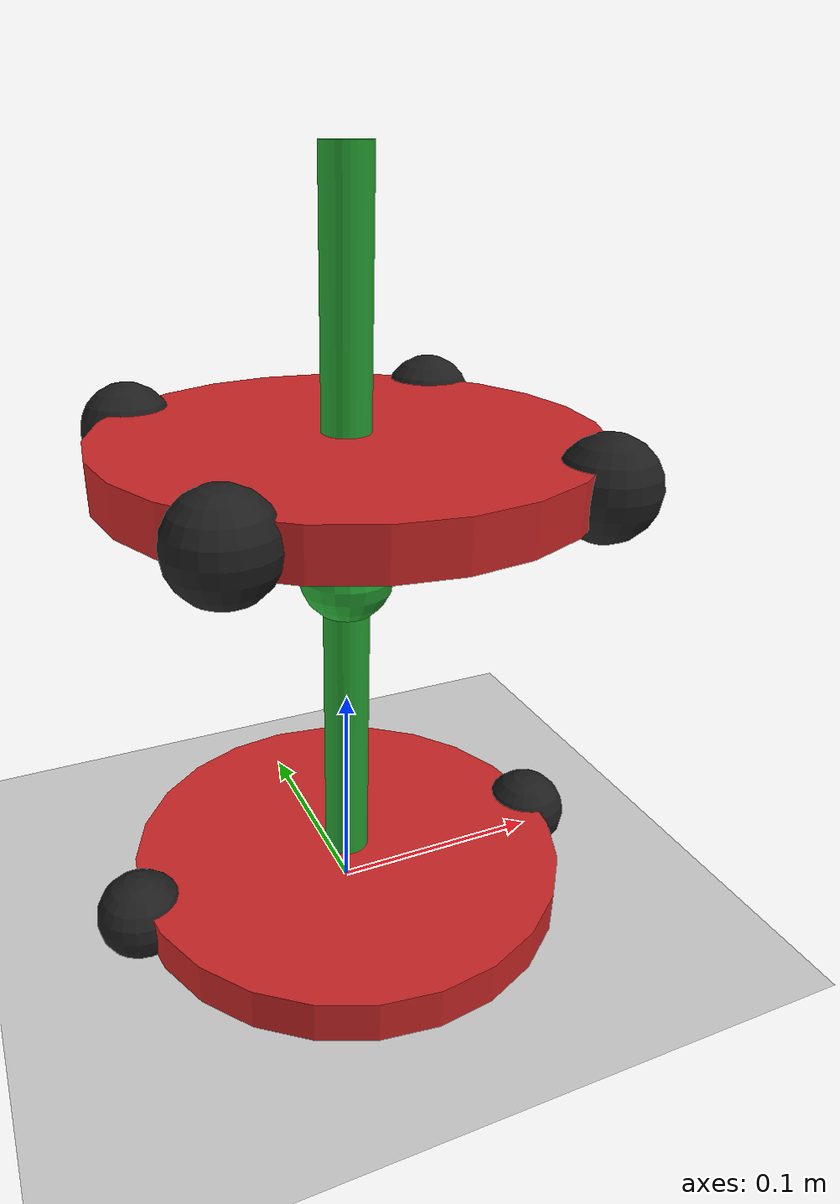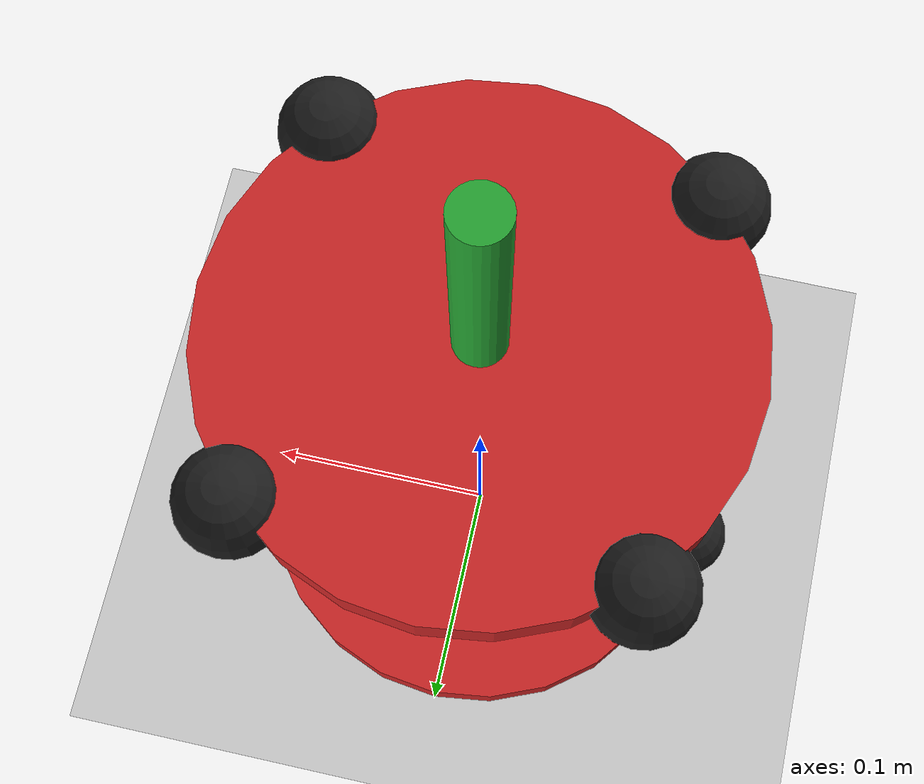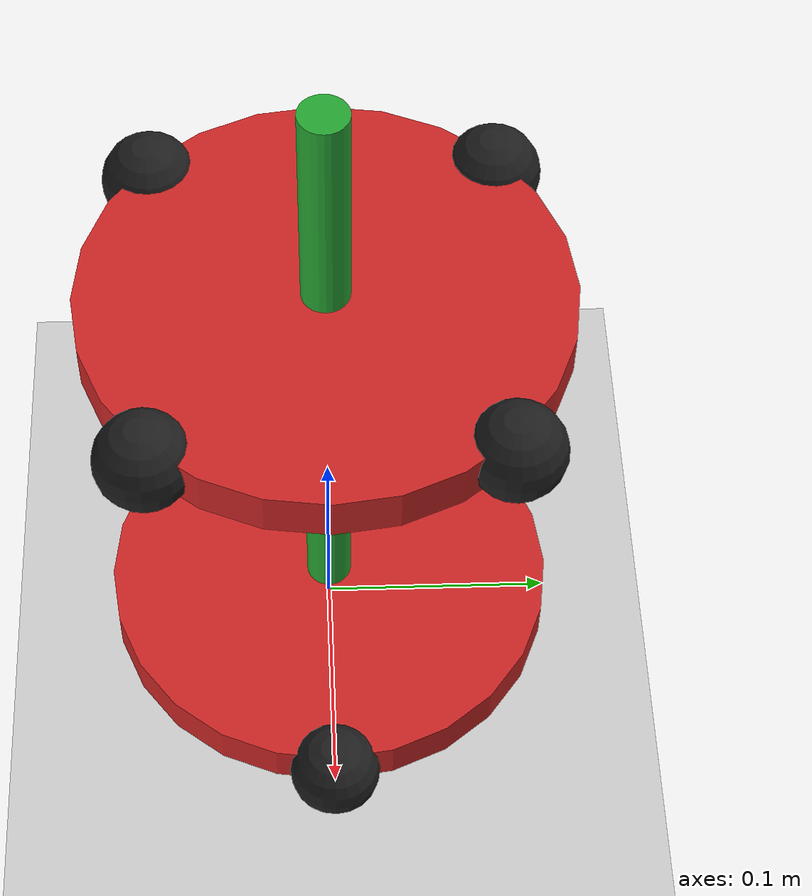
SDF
<?xml version="1.0" ?>
<sdf version="1.5">
  <world name="default">
    <!-- A global light source -->
    <include>
      <uri>model://sun</uri>
    </include>
    <!-- A ground plane -->
    <include>
      <uri>model://ground_plane</uri>
    </include>

    <!-- A testing model that includes the Velodyne sensor model -->
      <include>
        <uri>model://cable_joint</uri>
      </include>
      <plugin name="cable_force" filename="libcableforce_plugin.so"/>
    <physics type='ode'>
 	 <max_step_size>0.01</max_step_size>
 	 <real_time_factor>1</real_time_factor>
  	<real_time_update_rate>100</real_time_update_rate>
 	 <gravity>0 0 0</gravity>
    </physics>
      <!-- Attach the plugin to this model -->

  </world>
</sdf>

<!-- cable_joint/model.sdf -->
<sdf version='1.6'>
  <model name='cable_joint'>
    <link name='link_0'>
      <pose frame=''>0 0 0.01 0 -0 0</pose>
      <inertial>
        <mass>1e+07</mass>
        <inertia>
          <ixx>100000</ixx>
          <ixy>0</ixy>
          <ixz>0</ixz>
          <iyy>100000</iyy>
          <iyz>0</iyz>
          <izz>100000</izz>
        </inertia>
        <pose frame=''>0 0 0 0 -0 0</pose>
      </inertial>
      <self_collide>0</self_collide>
      <kinematic>0</kinematic>
      <gravity>1</gravity>
      <visual name='visual'>
        <pose frame=''>0 0 0 0 -0 0</pose>
        <geometry>
          <cylinder>
            <radius>0.1</radius>
            <length>0.02</length>
          </cylinder>
        </geometry>
        <material>
          <lighting>1</lighting>
          <script>
            <uri>file://media/materials/scripts/gazebo.material</uri>
            <name>Gazebo/Red</name>
          </script>
          <emissive>0 0 0 1</emissive>
          <shader type='vertex'>
            <normal_map>__default__</normal_map>
          </shader>
        </material>
        <cast_shadows>1</cast_shadows>
        <transparency>0</transparency>
      </visual>
      <collision name='collision'>
        <laser_retro>0</laser_retro>
        <max_contacts>100</max_contacts>
        <pose frame=''>0 0 0 0 -0 0</pose>
        <geometry>
          <cylinder>
            <radius>0.1</radius>
            <length>0.02</length>
          </cylinder>
        </geometry>
        <surface>
          <friction>
            <ode>
              <mu>1</mu>
              <mu2>1</mu2>
              <fdir1>0 0 0</fdir1>
              <slip1>0</slip1>
              <slip2>0</slip2>
            </ode>
            <torsional>
              <coefficient>1</coefficient>
              <patch_radius>0</patch_radius>
              <surface_radius>0</surface_radius>
              <use_patch_radius>1</use_patch_radius>
              <ode>
                <slip>0</slip>
              </ode>
            </torsional>
          </friction>
          <bounce>
            <restitution_coefficient>0</restitution_coefficient>
            <threshold>1e+06</threshold>
          </bounce>
          <contact>
            <collide_without_contact>0</collide_without_contact>
            <collide_without_contact_bitmask>1</collide_without_contact_bitmask>
            <collide_bitmask>1</collide_bitmask>
            <ode>
              <soft_cfm>0</soft_cfm>
              <soft_erp>0.2</soft_erp>
              <kp>1e+13</kp>
              <kd>1</kd>
              <max_vel>0.01</max_vel>
              <min_depth>0</min_depth>
            </ode>
            <bullet>
              <split_impulse>1</split_impulse>
              <split_impulse_penetration_threshold>-0.01</split_impulse_penetration_threshold>
              <soft_cfm>0</soft_cfm>
              <soft_erp>0.2</soft_erp>
              <kp>1e+13</kp>
              <kd>1</kd>
            </bullet>
          </contact>
        </surface>
      </collision>
    </link>
    <link name='link_1'>
      <pose frame=''>-0 0 0.09 0 -0 0</pose>
      <inertial>
        <mass>1</mass>
        <inertia>
          <ixx>0.145833</ixx>
          <ixy>0</ixy>
          <ixz>0</ixz>
          <iyy>0.145833</iyy>
          <iyz>0</iyz>
          <izz>0.125</izz>
        </inertia>
        <pose frame=''>0 0 0 0 -0 0</pose>
      </inertial>
      <self_collide>0</self_collide>
      <kinematic>0</kinematic>
      <visual name='visual'>
        <pose frame=''>0 0 0 0 -0 0</pose>
        <geometry>
          <cylinder>
            <radius>0.01</radius>
            <length>0.14</length>
          </cylinder>
        </geometry>
        <material>
          <lighting>1</lighting>
          <script>
            <uri>file://media/materials/scripts/gazebo.material</uri>
            <name>Gazebo/Green</name>
          </script>
          <emissive>0 0 0 1</emissive>
          <shader type='vertex'>
            <normal_map>__default__</normal_map>
          </shader>
        </material>
        <cast_shadows>1</cast_shadows>
        <transparency>0</transparency>
      </visual>
      <collision name='collision'>
        <laser_retro>0</laser_retro>
        <max_contacts>100</max_contacts>
        <pose frame=''>0 0 0 0 -0 0</pose>
        <geometry>
          <cylinder>
            <radius>0.01</radius>
            <length>0.01</length>
          </cylinder>
        </geometry>
        <surface>
          <friction>
            <ode>
              <mu>1</mu>
              <mu2>1</mu2>
              <fdir1>0 0 0</fdir1>
              <slip1>0</slip1>
              <slip2>0</slip2>
            </ode>
            <torsional>
              <coefficient>1</coefficient>
              <patch_radius>0</patch_radius>
              <surface_radius>0</surface_radius>
              <use_patch_radius>1</use_patch_radius>
              <ode>
                <slip>0</slip>
              </ode>
            </torsional>
          </friction>
          <bounce>
            <restitution_coefficient>0</restitution_coefficient>
            <threshold>1e+06</threshold>
          </bounce>
          <contact>
            <collide_without_contact>0</collide_without_contact>
            <collide_without_contact_bitmask>1</collide_without_contact_bitmask>
            <collide_bitmask>1</collide_bitmask>
            <ode>
              <soft_cfm>0</soft_cfm>
              <soft_erp>0.2</soft_erp>
              <kp>1e+13</kp>
              <kd>1</kd>
              <max_vel>0.01</max_vel>
              <min_depth>0</min_depth>
            </ode>
            <bullet>
              <split_impulse>1</split_impulse>
              <split_impulse_penetration_threshold>-0.01</split_impulse_penetration_threshold>
              <soft_cfm>0</soft_cfm>
              <soft_erp>0.2</soft_erp>
              <kp>1e+13</kp>
              <kd>1</kd>
            </bullet>
          </contact>
        </surface>
      </collision>
    </link>
    <link name='link_2'>
      <pose frame=''>0 -0 0.18 0 -0 0</pose>
      <inertial>
        <mass>2</mass>
        <inertia>
          <ixx>0.01</ixx>
          <ixy>0</ixy>
          <ixz>0</ixz>
          <iyy>0.01</iyy>
          <iyz>0</iyz>
          <izz>0.01</izz>
        </inertia>
        <pose frame=''>0 0 0 0 -0 0</pose>
      </inertial>
      <self_collide>0</self_collide>
      <kinematic>0</kinematic>
      <visual name='visual'>
        <pose frame=''>0 0 0 0 -0 0</pose>
        <geometry>
          <cylinder>
            <radius>0.01</radius>
            <length>0.04</length>
          </cylinder>
        </geometry>
        <material>
          <lighting>1</lighting>
          <script>
            <uri>file://media/materials/scripts/gazebo.material</uri>
            <name>Gazebo/Green</name>
          </script>
          <emissive>0 0 0 1</emissive>
          <shader type='vertex'>
            <normal_map>__default__</normal_map>
          </shader>
        </material>
        <cast_shadows>1</cast_shadows>
        <transparency>0</transparency>
      </visual>
      <collision name='collision'>
        <laser_retro>0</laser_retro>
        <max_contacts>100</max_contacts>
        <pose frame=''>0 0 0 0 -0 0</pose>
        <geometry>
          <cylinder>
            <radius>0.01</radius>
            <length>0.01</length>
          </cylinder>
        </geometry>
        <surface>
          <friction>
            <ode>
              <mu>1</mu>
              <mu2>1</mu2>
              <fdir1>0 0 0</fdir1>
              <slip1>0</slip1>
              <slip2>0</slip2>
            </ode>
            <torsional>
              <coefficient>1</coefficient>
              <patch_radius>0</patch_radius>
              <surface_radius>0</surface_radius>
              <use_patch_radius>1</use_patch_radius>
              <ode>
                <slip>0</slip>
              </ode>
            </torsional>
          </friction>
          <bounce>
            <restitution_coefficient>0</restitution_coefficient>
            <threshold>1e+06</threshold>
          </bounce>
          <contact>
            <collide_without_contact>0</collide_without_contact>
            <collide_without_contact_bitmask>1</collide_without_contact_bitmask>
            <collide_bitmask>1</collide_bitmask>
            <ode>
              <soft_cfm>0</soft_cfm>
              <soft_erp>0.2</soft_erp>
              <kp>1e+13</kp>
              <kd>1</kd>
              <max_vel>0.01</max_vel>
              <min_depth>0</min_depth>
            </ode>
            <bullet>
              <split_impulse>1</split_impulse>
              <split_impulse_penetration_threshold>-0.01</split_impulse_penetration_threshold>
              <soft_cfm>0</soft_cfm>
              <soft_erp>0.2</soft_erp>
              <kp>1e+13</kp>
              <kd>1</kd>
            </bullet>
          </contact>
        </surface>
      </collision>
    </link>
    <link name='link_3'>
      <pose frame=''>-0 0 0.21 0 -0 0</pose>
      <inertial>
        <mass>1</mass>
        <inertia>
          <ixx>0.1</ixx>
          <ixy>0</ixy>
          <ixz>0</ixz>
          <iyy>0.1</iyy>
          <iyz>0</iyz>
          <izz>0.1</izz>
        </inertia>
        <pose frame=''>0 0 0 0 -0 0</pose>
      </inertial>
      <self_collide>0</self_collide>
      <kinematic>0</kinematic>
      <gravity>1</gravity>
      <visual name='visual'>
        <pose frame=''>0 0 0 0 -0 0</pose>
        <geometry>
          <cylinder>
            <radius>0.1</radius>
            <length>0.02</length>
          </cylinder>
        </geometry>
        <material>
          <lighting>1</lighting>
          <script>
            <uri>file://media/materials/scripts/gazebo.material</uri>
            <name>Gazebo/Red</name>
          </script>
          <emissive>0 0 0 1</emissive>
          <shader type='vertex'>
            <normal_map>__default__</normal_map>
          </shader>
        </material>
        <cast_shadows>1</cast_shadows>
        <transparency>0</transparency>
      </visual>
      <collision name='collision'>
        <laser_retro>0</laser_retro>
        <max_contacts>100</max_contacts>
        <pose frame=''>0 0 0 0 -0 0</pose>
        <geometry>
          <cylinder>
            <radius>0.1</radius>
            <length>0.02</length>
          </cylinder>
        </geometry>
        <surface>
          <friction>
            <ode>
              <mu>1</mu>
              <mu2>1</mu2>
              <fdir1>0 0 0</fdir1>
              <slip1>0</slip1>
              <slip2>0</slip2>
            </ode>
            <torsional>
              <coefficient>1</coefficient>
              <patch_radius>0</patch_radius>
              <surface_radius>0</surface_radius>
              <use_patch_radius>1</use_patch_radius>
              <ode>
                <slip>0</slip>
              </ode>
            </torsional>
          </friction>
          <bounce>
            <restitution_coefficient>0</restitution_coefficient>
            <threshold>1e+06</threshold>
          </bounce>
          <contact>
            <collide_without_contact>0</collide_without_contact>
            <collide_without_contact_bitmask>1</collide_without_contact_bitmask>
            <collide_bitmask>1</collide_bitmask>
            <ode>
              <soft_cfm>0</soft_cfm>
              <soft_erp>0.2</soft_erp>
              <kp>1e+13</kp>
              <kd>1</kd>
              <max_vel>0.01</max_vel>
              <min_depth>0</min_depth>
            </ode>
            <bullet>
              <split_impulse>1</split_impulse>
              <split_impulse_penetration_threshold>-0.01</split_impulse_penetration_threshold>
              <soft_cfm>0</soft_cfm>
              <soft_erp>0.2</soft_erp>
              <kp>1e+13</kp>
              <kd>1</kd>
            </bullet>
          </contact>
        </surface>
      </collision>
    </link>
    <link name='link_4'>
      <pose frame=''>0 -0 0.16 0 -0 0</pose>
      <inertial>
        <mass>1</mass>
        <inertia>
          <ixx>0.145833</ixx>
          <ixy>0</ixy>
          <ixz>0</ixz>
          <iyy>0.145833</iyy>
          <iyz>0</iyz>
          <izz>0.125</izz>
        </inertia>
        <pose frame=''>0 0 0 0 -0 0</pose>
      </inertial>
      <self_collide>0</self_collide>
      <kinematic>0</kinematic>
      <visual name='visual'>
        <pose frame=''>0 0 0 0 -0 0</pose>
        <geometry>
          <sphere>
            <radius>0.02</radius>
          </sphere>
        </geometry>
        <material>
          <lighting>1</lighting>
          <script>
            <uri>file://media/materials/scripts/gazebo.material</uri>
            <name>Gazebo/Green</name>
          </script>
          <emissive>0 0 0 1</emissive>
          <shader type='vertex'>
            <normal_map>__default__</normal_map>
          </shader>
        </material>
        <cast_shadows>1</cast_shadows>
        <transparency>0</transparency>
      </visual>
      <collision name='collision'>
        <laser_retro>0</laser_retro>
        <max_contacts>100</max_contacts>
        <pose frame=''>0 0 0 0 -0 0</pose>
        <geometry>
          <sphere>
            <radius>0.003</radius>
          </sphere>
        </geometry>
        <surface>
          <friction>
            <ode>
              <mu>1</mu>
              <mu2>1</mu2>
              <fdir1>0 0 0</fdir1>
              <slip1>0</slip1>
              <slip2>0</slip2>
            </ode>
            <torsional>
              <coefficient>1</coefficient>
              <patch_radius>0</patch_radius>
              <surface_radius>0</surface_radius>
              <use_patch_radius>1</use_patch_radius>
              <ode>
                <slip>0</slip>
              </ode>
            </torsional>
          </friction>
          <bounce>
            <restitution_coefficient>0</restitution_coefficient>
            <threshold>1e+06</threshold>
          </bounce>
          <contact>
            <collide_without_contact>0</collide_without_contact>
            <collide_without_contact_bitmask>1</collide_without_contact_bitmask>
            <collide_bitmask>1</collide_bitmask>
            <ode>
              <soft_cfm>0</soft_cfm>
              <soft_erp>0.2</soft_erp>
              <kp>1e+13</kp>
              <kd>1</kd>
              <max_vel>0.01</max_vel>
              <min_depth>0</min_depth>
            </ode>
            <bullet>
              <split_impulse>1</split_impulse>
              <split_impulse_penetration_threshold>-0.01</split_impulse_penetration_threshold>
              <soft_cfm>0</soft_cfm>
              <soft_erp>0.2</soft_erp>
              <kp>1e+13</kp>
              <kd>1</kd>
            </bullet>
          </contact>
        </surface>
      </collision>
    </link>
    <link name='baseball1'>
      <pose frame=''>0.1 -0 0.01 0 -0 0</pose>
      <inertial>
        <mass>0.001</mass>
        <inertia>
          <ixx>0.000145833</ixx>
          <ixy>0</ixy>
          <ixz>0</ixz>
          <iyy>0.000145833</iyy>
          <iyz>0</iyz>
          <izz>0.000125</izz>
        </inertia>
        <pose frame=''>0 0 0 0 -0 0</pose>
      </inertial>
      <self_collide>0</self_collide>
      <kinematic>0</kinematic>
      <visual name='visual'>
        <pose frame=''>0 0 0 0 -0 0</pose>
        <geometry>
          <sphere>
            <radius>0.02</radius>
          </sphere>
        </geometry>
        <material>
          <lighting>1</lighting>
          <script>
            <uri>file://media/materials/scripts/gazebo.material</uri>
            <name>Gazebo/Black</name>
          </script>
          <emissive>0 0 0 1</emissive>
          <shader type='vertex'>
            <normal_map>__default__</normal_map>
          </shader>
        </material>
        <cast_shadows>1</cast_shadows>
        <transparency>0</transparency>
      </visual>
      <collision name='collision'>
        <laser_retro>0</laser_retro>
        <max_contacts>100</max_contacts>
        <pose frame=''>0 0 0 0 -0 0</pose>
        <geometry>
          <sphere>
            <radius>0.003</radius>
          </sphere>
        </geometry>
        <surface>
          <friction>
            <ode>
              <mu>1</mu>
              <mu2>1</mu2>
              <fdir1>0 0 0</fdir1>
              <slip1>0</slip1>
              <slip2>0</slip2>
            </ode>
            <torsional>
              <coefficient>1</coefficient>
              <patch_radius>0</patch_radius>
              <surface_radius>0</surface_radius>
              <use_patch_radius>1</use_patch_radius>
              <ode>
                <slip>0</slip>
              </ode>
            </torsional>
          </friction>
          <bounce>
            <restitution_coefficient>0</restitution_coefficient>
            <threshold>1e+06</threshold>
          </bounce>
          <contact>
            <collide_without_contact>0</collide_without_contact>
            <collide_without_contact_bitmask>1</collide_without_contact_bitmask>
            <collide_bitmask>1</collide_bitmask>
            <ode>
              <soft_cfm>0</soft_cfm>
              <soft_erp>0.2</soft_erp>
              <kp>1e+13</kp>
              <kd>1</kd>
              <max_vel>0.01</max_vel>
              <min_depth>0</min_depth>
            </ode>
            <bullet>
              <split_impulse>1</split_impulse>
              <split_impulse_penetration_threshold>-0.01</split_impulse_penetration_threshold>
              <soft_cfm>0</soft_cfm>
              <soft_erp>0.2</soft_erp>
              <kp>1e+13</kp>
              <kd>1</kd>
            </bullet>
          </contact>
        </surface>
      </collision>
    </link>
<link name='baseball2'>
      <pose frame=''>-0.1 -0 0.01 0 -0 0</pose>
      <inertial>
        <mass>0.001</mass>
        <inertia>
          <ixx>0.000145833</ixx>
          <ixy>0</ixy>
          <ixz>0</ixz>
          <iyy>0.000145833</iyy>
          <iyz>0</iyz>
          <izz>0.000125</izz>
        </inertia>
        <pose frame=''>0 0 0 0 -0 0</pose>
      </inertial>
      <self_collide>0</self_collide>
      <kinematic>0</kinematic>
      <visual name='visual'>
        <pose frame=''>0 0 0 0 -0 0</pose>
        <geometry>
          <sphere>
            <radius>0.02</radius>
          </sphere>
        </geometry>
        <material>
          <lighting>1</lighting>
          <script>
            <uri>file://media/materials/scripts/gazebo.material</uri>
            <name>Gazebo/Black</name>
          </script>
          <emissive>0 0 0 1</emissive>
          <shader type='vertex'>
            <normal_map>__default__</normal_map>
          </shader>
        </material>
        <cast_shadows>1</cast_shadows>
        <transparency>0</transparency>
      </visual>
      <collision name='collision'>
        <laser_retro>0</laser_retro>
        <max_contacts>100</max_contacts>
        <pose frame=''>0 0 0 0 -0 0</pose>
        <geometry>
          <sphere>
            <radius>0.003</radius>
          </sphere>
        </geometry>
        <surface>
          <friction>
            <ode>
              <mu>1</mu>
              <mu2>1</mu2>
              <fdir1>0 0 0</fdir1>
              <slip1>0</slip1>
              <slip2>0</slip2>
            </ode>
            <torsional>
              <coefficient>1</coefficient>
              <patch_radius>0</patch_radius>
              <surface_radius>0</surface_radius>
              <use_patch_radius>1</use_patch_radius>
              <ode>
                <slip>0</slip>
              </ode>
            </torsional>
          </friction>
          <bounce>
            <restitution_coefficient>0</restitution_coefficient>
            <threshold>1e+06</threshold>
          </bounce>
          <contact>
            <collide_without_contact>0</collide_without_contact>
            <collide_without_contact_bitmask>1</collide_without_contact_bitmask>
            <collide_bitmask>1</collide_bitmask>
            <ode>
              <soft_cfm>0</soft_cfm>
              <soft_erp>0.2</soft_erp>
              <kp>1e+13</kp>
              <kd>1</kd>
              <max_vel>0.01</max_vel>
              <min_depth>0</min_depth>
            </ode>
            <bullet>
              <split_impulse>1</split_impulse>
              <split_impulse_penetration_threshold>-0.01</split_impulse_penetration_threshold>
              <soft_cfm>0</soft_cfm>
              <soft_erp>0.2</soft_erp>
              <kp>1e+13</kp>
              <kd>1</kd>
            </bullet>
          </contact>
        </surface>
      </collision>
    </link>

<link name='topball1'>
      <pose frame=''>0.0707 -0.0707 0.21 0 -0 0</pose>
      <inertial>
        <mass>0.001</mass>
        <inertia>
          <ixx>0.000145833</ixx>
          <ixy>0</ixy>
          <ixz>0</ixz>
          <iyy>0.000145833</iyy>
          <iyz>0</iyz>
          <izz>0.000125</izz>
        </inertia>
        <pose frame=''>0 0 0 0 -0 0</pose>
      </inertial>
      <self_collide>0</self_collide>
      <kinematic>0</kinematic>
      <visual name='visual'>
        <pose frame=''>0 0 0 0 -0 0</pose>
        <geometry>
          <sphere>
            <radius>0.02</radius>
          </sphere>
        </geometry>
        <material>
          <lighting>1</lighting>
          <script>
            <uri>file://media/materials/scripts/gazebo.material</uri>
            <name>Gazebo/Black</name>
          </script>
          <emissive>0 0 0 1</emissive>
          <shader type='vertex'>
            <normal_map>__default__</normal_map>
          </shader>
        </material>
        <cast_shadows>1</cast_shadows>
        <transparency>0</transparency>
      </visual>
      <collision name='collision'>
        <laser_retro>0</laser_retro>
        <max_contacts>100</max_contacts>
        <pose frame=''>0 0 0 0 -0 0</pose>
        <geometry>
          <sphere>
            <radius>0.003</radius>
          </sphere>
        </geometry>
        <surface>
          <friction>
            <ode>
              <mu>1</mu>
              <mu2>1</mu2>
              <fdir1>0 0 0</fdir1>
              <slip1>0</slip1>
              <slip2>0</slip2>
            </ode>
            <torsional>
              <coefficient>1</coefficient>
              <patch_radius>0</patch_radius>
              <surface_radius>0</surface_radius>
              <use_patch_radius>1</use_patch_radius>
              <ode>
                <slip>0</slip>
              </ode>
            </torsional>
          </friction>
          <bounce>
            <restitution_coefficient>0</restitution_coefficient>
            <threshold>1e+06</threshold>
          </bounce>
          <contact>
            <collide_without_contact>0</collide_without_contact>
            <collide_without_contact_bitmask>1</collide_without_contact_bitmask>
            <collide_bitmask>1</collide_bitmask>
            <ode>
              <soft_cfm>0</soft_cfm>
              <soft_erp>0.2</soft_erp>
              <kp>1e+13</kp>
              <kd>1</kd>
              <max_vel>0.01</max_vel>
              <min_depth>0</min_depth>
            </ode>
            <bullet>
              <split_impulse>1</split_impulse>
              <split_impulse_penetration_threshold>-0.01</split_impulse_penetration_threshold>
              <soft_cfm>0</soft_cfm>
              <soft_erp>0.2</soft_erp>
              <kp>1e+13</kp>
              <kd>1</kd>
            </bullet>
          </contact>
        </surface>
      </collision>
    </link>
<link name='topball2'>
      <pose frame=''>0.0707 0.0707 0.21 0 -0 0</pose>
      <inertial>
        <mass>0.001</mass>
        <inertia>
          <ixx>0.000145833</ixx>
          <ixy>0</ixy>
          <ixz>0</ixz>
          <iyy>0.000145833</iyy>
          <iyz>0</iyz>
          <izz>0.000125</izz>
        </inertia>
        <pose frame=''>0 0 0 0 -0 0</pose>
      </inertial>
      <self_collide>0</self_collide>
      <kinematic>0</kinematic>
      <visual name='visual'>
        <pose frame=''>0 0 0 0 -0 0</pose>
        <geometry>
          <sphere>
            <radius>0.02</radius>
          </sphere>
        </geometry>
        <material>
          <lighting>1</lighting>
          <script>
            <uri>file://media/materials/scripts/gazebo.material</uri>
            <name>Gazebo/Black</name>
          </script>
          <emissive>0 0 0 1</emissive>
          <shader type='vertex'>
            <normal_map>__default__</normal_map>
          </shader>
        </material>
        <cast_shadows>1</cast_shadows>
        <transparency>0</transparency>
      </visual>
      <collision name='collision'>
        <laser_retro>0</laser_retro>
        <max_contacts>100</max_contacts>
        <pose frame=''>0 0 0 0 -0 0</pose>
        <geometry>
          <sphere>
            <radius>0.003</radius>
          </sphere>
        </geometry>
        <surface>
          <friction>
            <ode>
              <mu>1</mu>
              <mu2>1</mu2>
              <fdir1>0 0 0</fdir1>
              <slip1>0</slip1>
              <slip2>0</slip2>
            </ode>
            <torsional>
              <coefficient>1</coefficient>
              <patch_radius>0</patch_radius>
              <surface_radius>0</surface_radius>
              <use_patch_radius>1</use_patch_radius>
              <ode>
                <slip>0</slip>
              </ode>
            </torsional>
          </friction>
          <bounce>
            <restitution_coefficient>0</restitution_coefficient>
            <threshold>1e+06</threshold>
          </bounce>
          <contact>
            <collide_without_contact>0</collide_without_contact>
            <collide_without_contact_bitmask>1</collide_without_contact_bitmask>
            <collide_bitmask>1</collide_bitmask>
            <ode>
              <soft_cfm>0</soft_cfm>
              <soft_erp>0.2</soft_erp>
              <kp>1e+13</kp>
              <kd>1</kd>
              <max_vel>0.01</max_vel>
              <min_depth>0</min_depth>
            </ode>
            <bullet>
              <split_impulse>1</split_impulse>
              <split_impulse_penetration_threshold>-0.01</split_impulse_penetration_threshold>
              <soft_cfm>0</soft_cfm>
              <soft_erp>0.2</soft_erp>
              <kp>1e+13</kp>
              <kd>1</kd>
            </bullet>
          </contact>
        </surface>
      </collision>
    </link>
<link name='topball3'>
      <pose frame=''>-0.0707 0.0707 0.21 0 -0 0</pose>
      <inertial>
        <mass>0.001</mass>
        <inertia>
          <ixx>0.000145833</ixx>
          <ixy>0</ixy>
          <ixz>0</ixz>
          <iyy>0.000145833</iyy>
          <iyz>0</iyz>
          <izz>0.000125</izz>
        </inertia>
        <pose frame=''>0 0 0 0 -0 0</pose>
      </inertial>
      <self_collide>0</self_collide>
      <kinematic>0</kinematic>
      <visual name='visual'>
        <pose frame=''>0 0 0 0 -0 0</pose>
        <geometry>
          <sphere>
            <radius>0.02</radius>
          </sphere>
        </geometry>
        <material>
          <lighting>1</lighting>
          <script>
            <uri>file://media/materials/scripts/gazebo.material</uri>
            <name>Gazebo/Black</name>
          </script>
          <emissive>0 0 0 1</emissive>
          <shader type='vertex'>
            <normal_map>__default__</normal_map>
          </shader>
        </material>
        <cast_shadows>1</cast_shadows>
        <transparency>0</transparency>
      </visual>
      <collision name='collision'>
        <laser_retro>0</laser_retro>
        <max_contacts>100</max_contacts>
        <pose frame=''>0 0 0 0 -0 0</pose>
        <geometry>
          <sphere>
            <radius>0.003</radius>
          </sphere>
        </geometry>
        <surface>
          <friction>
            <ode>
              <mu>1</mu>
              <mu2>1</mu2>
              <fdir1>0 0 0</fdir1>
              <slip1>0</slip1>
              <slip2>0</slip2>
            </ode>
            <torsional>
              <coefficient>1</coefficient>
              <patch_radius>0</patch_radius>
              <surface_radius>0</surface_radius>
              <use_patch_radius>1</use_patch_radius>
              <ode>
                <slip>0</slip>
              </ode>
            </torsional>
          </friction>
          <bounce>
            <restitution_coefficient>0</restitution_coefficient>
            <threshold>1e+06</threshold>
          </bounce>
          <contact>
            <collide_without_contact>0</collide_without_contact>
            <collide_without_contact_bitmask>1</collide_without_contact_bitmask>
            <collide_bitmask>1</collide_bitmask>
            <ode>
              <soft_cfm>0</soft_cfm>
              <soft_erp>0.2</soft_erp>
              <kp>1e+13</kp>
              <kd>1</kd>
              <max_vel>0.01</max_vel>
              <min_depth>0</min_depth>
            </ode>
            <bullet>
              <split_impulse>1</split_impulse>
              <split_impulse_penetration_threshold>-0.01</split_impulse_penetration_threshold>
              <soft_cfm>0</soft_cfm>
              <soft_erp>0.2</soft_erp>
              <kp>1e+13</kp>
              <kd>1</kd>
            </bullet>
          </contact>
        </surface>
      </collision>
    </link>
<link name='topball4'>
      <pose frame=''>-0.0707 -0.0707 0.21 0 -0 0</pose>
      <inertial>
        <mass>0.001</mass>
        <inertia>
          <ixx>0.000145833</ixx>
          <ixy>0</ixy>
          <ixz>0</ixz>
          <iyy>0.000145833</iyy>
          <iyz>0</iyz>
          <izz>0.000125</izz>
        </inertia>
        <pose frame=''>0 0 0 0 -0 0</pose>
      </inertial>
      <self_collide>0</self_collide>
      <kinematic>0</kinematic>
      <visual name='visual'>
        <pose frame=''>0 0 0 0 -0 0</pose>
        <geometry>
          <sphere>
            <radius>0.02</radius>
          </sphere>
        </geometry>
        <material>
          <lighting>1</lighting>
          <script>
            <uri>file://media/materials/scripts/gazebo.material</uri>
            <name>Gazebo/Black</name>
          </script>
          <emissive>0 0 0 1</emissive>
          <shader type='vertex'>
            <normal_map>__default__</normal_map>
          </shader>
        </material>
        <cast_shadows>1</cast_shadows>
        <transparency>0</transparency>
      </visual>
      <collision name='collision'>
        <laser_retro>0</laser_retro>
        <max_contacts>100</max_contacts>
        <pose frame=''>0 0 0 0 -0 0</pose>
        <geometry>
          <sphere>
            <radius>0.003</radius>
          </sphere>
        </geometry>
        <surface>
          <friction>
            <ode>
              <mu>1</mu>
              <mu2>1</mu2>
              <fdir1>0 0 0</fdir1>
              <slip1>0</slip1>
              <slip2>0</slip2>
            </ode>
            <torsional>
              <coefficient>1</coefficient>
              <patch_radius>0</patch_radius>
              <surface_radius>0</surface_radius>
              <use_patch_radius>1</use_patch_radius>
              <ode>
                <slip>0</slip>
              </ode>
            </torsional>
          </friction>
          <bounce>
            <restitution_coefficient>0</restitution_coefficient>
            <threshold>1e+06</threshold>
          </bounce>
          <contact>
            <collide_without_contact>0</collide_without_contact>
            <collide_without_contact_bitmask>1</collide_without_contact_bitmask>
            <collide_bitmask>1</collide_bitmask>
            <ode>
              <soft_cfm>0</soft_cfm>
              <soft_erp>0.2</soft_erp>
              <kp>1e+13</kp>
              <kd>1</kd>
              <max_vel>0.01</max_vel>
              <min_depth>0</min_depth>
            </ode>
            <bullet>
              <split_impulse>1</split_impulse>
              <split_impulse_penetration_threshold>-0.01</split_impulse_penetration_threshold>
              <soft_cfm>0</soft_cfm>
              <soft_erp>0.2</soft_erp>
              <kp>1e+13</kp>
              <kd>1</kd>
            </bullet>
          </contact>
        </surface>
      </collision>
    </link>
<link name='link_5'>
      <pose frame=''>0 -0 0.27 0 -0 0</pose>
      <inertial>
        <mass>4</mass>
        <inertia>
          <ixx>0.01</ixx>
          <ixy>0</ixy>
          <ixz>0</ixz>
          <iyy>0.01</iyy>
          <iyz>0</iyz>
          <izz>0.01</izz>
        </inertia>
        <pose frame=''>0 0 0 0 -0 0</pose>
      </inertial>
      <self_collide>0</self_collide>
      <kinematic>0</kinematic>
      <visual name='visual'>
        <pose frame=''>0 0 0 0 -0 0</pose>
        <geometry>
          <cylinder>
            <radius>0.01</radius>
            <length>0.1</length>
          </cylinder>
        </geometry>
        <material>
          <lighting>1</lighting>
          <script>
            <uri>file://media/materials/scripts/gazebo.material</uri>
            <name>Gazebo/Green</name>
          </script>
          <emissive>0 0 0 1</emissive>
          <shader type='vertex'>
            <normal_map>__default__</normal_map>
          </shader>
        </material>
        <cast_shadows>1</cast_shadows>
        <transparency>0</transparency>
      </visual>
      <collision name='collision'>
        <laser_retro>0</laser_retro>
        <max_contacts>100</max_contacts>
        <pose frame=''>0 0 0 0 -0 0</pose>
        <geometry>
          <cylinder>
            <radius>0.01</radius>
            <length>0.01</length>
          </cylinder>
        </geometry>
        <surface>
          <friction>
            <ode>
              <mu>1</mu>
              <mu2>1</mu2>
              <fdir1>0 0 0</fdir1>
              <slip1>0</slip1>
              <slip2>0</slip2>
            </ode>
            <torsional>
              <coefficient>1</coefficient>
              <patch_radius>0</patch_radius>
              <surface_radius>0</surface_radius>
              <use_patch_radius>1</use_patch_radius>
              <ode>
                <slip>0</slip>
              </ode>
            </torsional>
          </friction>
          <bounce>
            <restitution_coefficient>0</restitution_coefficient>
            <threshold>1e+06</threshold>
          </bounce>
          <contact>
            <collide_without_contact>0</collide_without_contact>
            <collide_without_contact_bitmask>1</collide_without_contact_bitmask>
            <collide_bitmask>1</collide_bitmask>
            <ode>
              <soft_cfm>0</soft_cfm>
              <soft_erp>0.2</soft_erp>
              <kp>1e+13</kp>
              <kd>1</kd>
              <max_vel>0.01</max_vel>
              <min_depth>0</min_depth>
            </ode>
            <bullet>
              <split_impulse>1</split_impulse>
              <split_impulse_penetration_threshold>-0.01</split_impulse_penetration_threshold>
              <soft_cfm>0</soft_cfm>
              <soft_erp>0.2</soft_erp>
              <kp>1e+13</kp>
              <kd>1</kd>
            </bullet>
          </contact>
        </surface>
      </collision>
    </link>
    <joint name='link_0_JOINT_0' type='fixed'>
      <parent>link_0</parent>
      <child>link_1</child>
      <pose frame=''>0 0 -0.07 0 -0 0</pose>
      <physics>
        <ode>
          <limit>
            <cfm>0</cfm>
            <erp>0.2</erp>
          </limit>
          <suspension>
            <cfm>0</cfm>
            <erp>0.2</erp>
          </suspension>
        </ode>
      </physics>
    </joint>
    <joint name='link_1_JOINT_2' type='ball'>
      <parent>link_1</parent>
      <child>link_2</child>
      <pose frame=''>0 0 -0.02 0 -0 0</pose>
    </joint>
    <joint name='link_3_JOINT_1' type='fixed'>
      <parent>link_3</parent>
      <child>link_2</child>
      <pose frame=''>0 0 0 0 -0 0</pose>
    </joint>
    <joint name='ballfix' type='fixed'>
      <parent>link_4</parent>
      <child>link_1</child>
      <pose frame=''>0 0 0 0 -0 0</pose>
    </joint>

    <joint name='basejoint1' type='fixed'>
      <parent>link_0</parent>
      <child>baseball1</child>
      <pose frame=''>0 0 0 0 -0 0</pose>
    </joint>
    <joint name='basejoint2' type='fixed'>
      <parent>link_0</parent>
      <child>baseball2</child>
      <pose frame=''>0 0 0 0 -0 0</pose>
    </joint>
    <joint name='topjoint1' type='fixed'>
      <parent>link_3</parent>
      <child>topball1</child>
      <pose frame=''>0 0 0 0 -0 0</pose>
    </joint>
    <joint name='topjoint2' type='fixed'>
      <parent>link_3</parent>
      <child>topball2</child>
      <pose frame=''>0 0 0 0 -0 0</pose>
    </joint>
    <joint name='topjoint3' type='fixed'>
      <parent>link_3</parent>
      <child>topball3</child>
      <pose frame=''>0 0 0 0 -0 0</pose>
    </joint>
    <joint name='topjoint4' type='fixed'>
      <parent>link_3</parent>
      <child>topball4</child>
      <pose frame=''>0 0 0 0 -0 0</pose>
    </joint>
    <joint name='fixing_to_ground' type='fixed'>
      <parent>world</parent>
      <child>link_0</child>
      <pose frame=''>0 0 0 0 -0 0</pose>
    </joint>
    <joint name='toprod' type='fixed'>
      <parent>link_3</parent>
      <child>link_5</child>
      <pose frame=''>0 0 0 0 -0 0</pose>
    </joint>
    <static>0</static>
    <allow_auto_disable>1</allow_auto_disable>
  </model>
</sdf>
